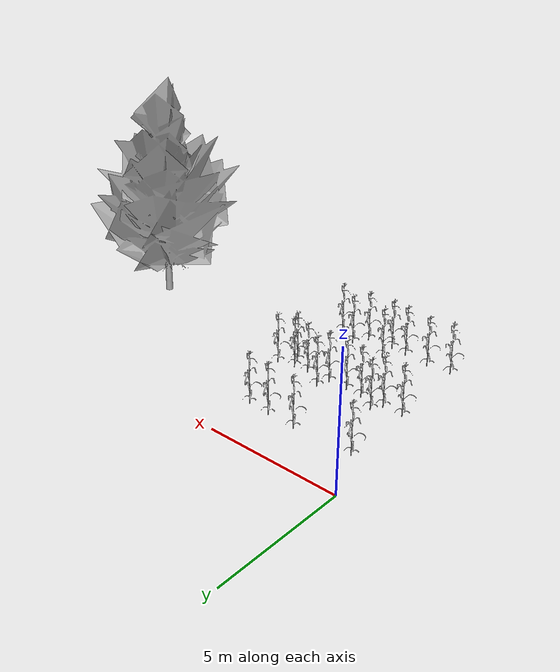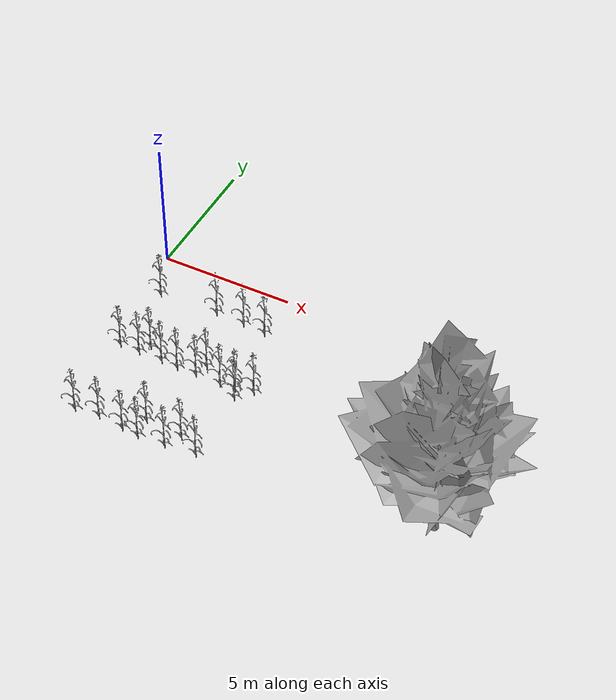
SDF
<sdf version="1.6">
 <world name="default">
  <model name="corn_stalk2">
   <static>1</static>
   <link name="corn_stalk2_link">
    <collision name="collision">
     <geometry><mesh><scale>1 1 1</scale><uri>model://corn_type2/meshes/model.stl</uri></mesh></geometry>
    </collision>
    <visual name="corn_stalk2_visual">
     <geometry><mesh><uri>model://corn_type2/meshes/model.stl</uri><scale>1 1 1</scale></mesh></geometry>
     <material>
      <script>
       <uri>model://corn_type2/materials/scripts</uri>
       <uri>model://corn_type2/materials/textures</uri>
       <name>corn_type2/Diffuse</name>
      </script>
     </material>
    </visual>
   </link>
   <pose>5.73501 -7.86532 0 0 -0 0</pose>
  </model>
  <model name="corn_stalk2_clone">
   <static>1</static>
   <link name="corn_stalk2_link">
    <collision name="collision">
     <geometry><mesh><scale>1 1 1</scale><uri>model://corn_type2/meshes/model.stl</uri></mesh></geometry>
    </collision>
    <visual name="corn_stalk2_visual">
     <geometry><mesh><uri>model://corn_type2/meshes/model.stl</uri><scale>1 1 1</scale></mesh></geometry>
     <material>
      <script>
       <uri>model://corn_type2/materials/scripts</uri>
       <uri>model://corn_type2/materials/textures</uri>
       <name>corn_type2/Diffuse</name>
      </script>
     </material>
    </visual>
   </link>
   <pose>4.6285 -8.00278 0 0 -0 0</pose>
  </model>
  <model name="corn_stalk2_clone_0">
   <static>1</static>
   <link name="corn_stalk2_link">
    <collision name="collision">
     <geometry><mesh><scale>1 1 1</scale><uri>model://corn_type2/meshes/model.stl</uri></mesh></geometry>
    </collision>
    <visual name="corn_stalk2_visual">
     <geometry><mesh><uri>model://corn_type2/meshes/model.stl</uri><scale>1 1 1</scale></mesh></geometry>
     <material>
      <script>
       <uri>model://corn_type2/materials/scripts</uri>
       <uri>model://corn_type2/materials/textures</uri>
       <name>corn_type2/Diffuse</name>
      </script>
     </material>
    </visual>
   </link>
   <pose>3.62653 -8.0596 0 0 -0 0</pose>
  </model>
  <model name="corn_stalk2_clone_1">
   <static>1</static>
   <link name="corn_stalk2_link">
    <collision name="collision">
     <geometry><mesh><scale>1 1 1</scale><uri>model://corn_type2/meshes/model.stl</uri></mesh></geometry>
    </collision>
    <visual name="corn_stalk2_visual">
     <geometry><mesh><uri>model://corn_type2/meshes/model.stl</uri><scale>1 1 1</scale></mesh></geometry>
     <material>
      <script>
       <uri>model://corn_type2/materials/scripts</uri>
       <uri>model://corn_type2/materials/textures</uri>
       <name>corn_type2/Diffuse</name>
      </script>
     </material>
    </visual>
   </link>
   <pose>3 -8 0 0 -0 0</pose>
  </model>
  <model name="corn_stalk2_clone_2">
   <static>1</static>
   <link name="corn_stalk2_link">
    <collision name="collision">
     <geometry><mesh><scale>1 1 1</scale><uri>model://corn_type2/meshes/model.stl</uri></mesh></geometry>
    </collision>
    <visual name="corn_stalk2_visual">
     <geometry><mesh><uri>model://corn_type2/meshes/model.stl</uri><scale>1 1 1</scale></mesh></geometry>
     <material>
      <script>
       <uri>model://corn_type2/materials/scripts</uri>
       <uri>model://corn_type2/materials/textures</uri>
       <name>corn_type2/Diffuse</name>
      </script>
     </material>
    </visual>
   </link>
   <pose>2.01327 -7.88367 0 0 -0 0</pose>
  </model>
  <model name="corn_stalk2_clone_3">
   <static>1</static>
   <link name="corn_stalk2_link">
    <collision name="collision">
     <geometry><mesh><scale>1 1 1</scale><uri>model://corn_type2/meshes/model.stl</uri></mesh></geometry>
    </collision>
    <visual name="corn_stalk2_visual">
     <geometry><mesh><uri>model://corn_type2/meshes/model.stl</uri><scale>1 1 1</scale></mesh></geometry>
     <material>
      <script>
       <uri>model://corn_type2/materials/scripts</uri>
       <uri>model://corn_type2/materials/textures</uri>
       <name>corn_type2/Diffuse</name>
      </script>
     </material>
    </visual>
   </link>
   <pose>1.11653 -7.97321 0 0 -0 0</pose>
  </model>
  <model name="corn_stalk2_clone_19">
   <static>1</static>
   <link name="corn_stalk2_link">
    <collision name="collision">
     <geometry><mesh><scale>1 1 1</scale><uri>model://corn_type2/meshes/model.stl</uri></mesh></geometry>
    </collision>
    <visual name="corn_stalk2_visual">
     <geometry><mesh><uri>model://corn_type2/meshes/model.stl</uri><scale>1 1 1</scale></mesh></geometry>
     <material>
      <script>
       <uri>model://corn_type2/materials/scripts</uri>
       <uri>model://corn_type2/materials/textures</uri>
       <name>corn_type2/Diffuse</name>
      </script>
     </material>
    </visual>
   </link>
   <pose>0.88456 -4.66776 0 0 -0 0</pose>
  </model>
  <model name="corn_stalk2_clone_20">
   <static>1</static>
   <link name="corn_stalk2_link">
    <collision name="collision">
     <geometry><mesh><scale>1 1 1</scale><uri>model://corn_type2/meshes/model.stl</uri></mesh></geometry>
    </collision>
    <visual name="corn_stalk2_visual">
     <geometry><mesh><uri>model://corn_type2/meshes/model.stl</uri><scale>1 1 1</scale></mesh></geometry>
     <material>
      <script>
       <uri>model://corn_type2/materials/scripts</uri>
       <uri>model://corn_type2/materials/textures</uri>
       <name>corn_type2/Diffuse</name>
      </script>
     </material>
    </visual>
   </link>
   <pose>1.65019 -4.68857 0 0 -0 0</pose>
  </model>
  <model name="corn_stalk2_clone_21">
   <static>1</static>
   <link name="corn_stalk2_link">
    <collision name="collision">
     <geometry><mesh><scale>1 1 1</scale><uri>model://corn_type2/meshes/model.stl</uri></mesh></geometry>
    </collision>
    <visual name="corn_stalk2_visual">
     <geometry><mesh><uri>model://corn_type2/meshes/model.stl</uri><scale>1 1 1</scale></mesh></geometry>
     <material>
      <script>
       <uri>model://corn_type2/materials/scripts</uri>
       <uri>model://corn_type2/materials/textures</uri>
       <name>corn_type2/Diffuse</name>
      </script>
     </material>
    </visual>
   </link>
   <pose>2.55559 -4.69142 0 0 -0 0</pose>
  </model>
  <model name="corn_stalk2_clone_22">
   <static>1</static>
   <link name="corn_stalk2_link">
    <collision name="collision">
     <geometry><mesh><scale>1 1 1</scale><uri>model://corn_type2/meshes/model.stl</uri></mesh></geometry>
    </collision>
    <visual name="corn_stalk2_visual">
     <geometry><mesh><uri>model://corn_type2/meshes/model.stl</uri><scale>1 1 1</scale></mesh></geometry>
     <material>
      <script>
       <uri>model://corn_type2/materials/scripts</uri>
       <uri>model://corn_type2/materials/textures</uri>
       <name>corn_type2/Diffuse</name>
      </script>
     </material>
    </visual>
   </link>
   <pose>3.20485 -4.73782 0 0 -0 0</pose>
  </model>
  <model name="corn_stalk2_clone_23">
   <static>1</static>
   <link name="corn_stalk2_link">
    <collision name="collision">
     <geometry><mesh><scale>1 1 1</scale><uri>model://corn_type2/meshes/model.stl</uri></mesh></geometry>
    </collision>
    <visual name="corn_stalk2_visual">
     <geometry><mesh><uri>model://corn_type2/meshes/model.stl</uri><scale>1 1 1</scale></mesh></geometry>
     <material>
      <script>
       <uri>model://corn_type2/materials/scripts</uri>
       <uri>model://corn_type2/materials/textures</uri>
       <name>corn_type2/Diffuse</name>
      </script>
     </material>
    </visual>
   </link>
   <pose>3.94305 -4.72702 0 0 -0 0</pose>
  </model>
  <model name="corn_stalk2_clone_24">
   <static>1</static>
   <link name="corn_stalk2_link">
    <collision name="collision">
     <geometry><mesh><scale>1 1 1</scale><uri>model://corn_type2/meshes/model.stl</uri></mesh></geometry>
    </collision>
    <visual name="corn_stalk2_visual">
     <geometry><mesh><uri>model://corn_type2/meshes/model.stl</uri><scale>1 1 1</scale></mesh></geometry>
     <material>
      <script>
       <uri>model://corn_type2/materials/scripts</uri>
       <uri>model://corn_type2/materials/textures</uri>
       <name>corn_type2/Diffuse</name>
      </script>
     </material>
    </visual>
   </link>
   <pose>4.89233 -4.7342 0 0 -0 0</pose>
  </model>
  <model name="corn_stalk2_clone_25">
   <static>1</static>
   <link name="corn_stalk2_link">
    <collision name="collision">
     <geometry><mesh><scale>1 1 1</scale><uri>model://corn_type2/meshes/model.stl</uri></mesh></geometry>
    </collision>
    <visual name="corn_stalk2_visual">
     <geometry><mesh><uri>model://corn_type2/meshes/model.stl</uri><scale>1 1 1</scale></mesh></geometry>
     <material>
      <script>
       <uri>model://corn_type2/materials/scripts</uri>
       <uri>model://corn_type2/materials/textures</uri>
       <name>corn_type2/Diffuse</name>
      </script>
     </material>
    </visual>
   </link>
   <pose>5.46065 -4.70234 0 0 -0 0</pose>
  </model>
  <model name="corn_stalk2_clone_26">
   <static>1</static>
   <link name="corn_stalk2_link">
    <collision name="collision">
     <geometry><mesh><scale>1 1 1</scale><uri>model://corn_type2/meshes/model.stl</uri></mesh></geometry>
    </collision>
    <visual name="corn_stalk2_visual">
     <geometry><mesh><uri>model://corn_type2/meshes/model.stl</uri><scale>1 1 1</scale></mesh></geometry>
     <material>
      <script>
       <uri>model://corn_type2/materials/scripts</uri>
       <uri>model://corn_type2/materials/textures</uri>
       <name>corn_type2/Diffuse</name>
      </script>
     </material>
    </visual>
   </link>
   <pose>5.08268 -1.90452 0 0 -0 0</pose>
  </model>
  <model name="corn_stalk2_clone_27">
   <static>1</static>
   <link name="corn_stalk2_link">
    <collision name="collision">
     <geometry><mesh><scale>1 1 1</scale><uri>model://corn_type2/meshes/model.stl</uri></mesh></geometry>
    </collision>
    <visual name="corn_stalk2_visual">
     <geometry><mesh><uri>model://corn_type2/meshes/model.stl</uri><scale>1 1 1</scale></mesh></geometry>
     <material>
      <script>
       <uri>model://corn_type2/materials/scripts</uri>
       <uri>model://corn_type2/materials/textures</uri>
       <name>corn_type2/Diffuse</name>
      </script>
     </material>
    </visual>
   </link>
   <pose>4.202 -1.82151 0 0 -0 0</pose>
  </model>
  <model name="corn_stalk2_clone_28">
   <static>1</static>
   <link name="corn_stalk2_link">
    <collision name="collision">
     <geometry><mesh><scale>1 1 1</scale><uri>model://corn_type2/meshes/model.stl</uri></mesh></geometry>
    </collision>
    <visual name="corn_stalk2_visual">
     <geometry><mesh><uri>model://corn_type2/meshes/model.stl</uri><scale>1 1 1</scale></mesh></geometry>
     <material>
      <script>
       <uri>model://corn_type2/materials/scripts</uri>
       <uri>model://corn_type2/materials/textures</uri>
       <name>corn_type2/Diffuse</name>
      </script>
     </material>
    </visual>
   </link>
   <pose>3.09583 -1.77801 0 0 -0 0</pose>
  </model>
  <model name="corn_stalk2_clone_30">
   <static>1</static>
   <link name="corn_stalk2_link">
    <collision name="collision">
     <geometry><mesh><scale>1 1 1</scale><uri>model://corn_type2/meshes/model.stl</uri></mesh></geometry>
    </collision>
    <visual name="corn_stalk2_visual">
     <geometry><mesh><uri>model://corn_type2/meshes/model.stl</uri><scale>1 1 1</scale></mesh></geometry>
     <material>
      <script>
       <uri>model://corn_type2/materials/scripts</uri>
       <uri>model://corn_type2/materials/textures</uri>
       <name>corn_type2/Diffuse</name>
      </script>
     </material>
    </visual>
   </link>
   <pose>0.848261 -1.85441 0 0 -0 0</pose>
  </model>
  <model name="tree_type2">
   <static>1</static>
   <link name="link">
    <collision name="collision"><geometry><box><size>0.3 0.3 10</size></box></geometry></collision>
    <visual name="visual">
     <geometry><mesh><uri>model://tree_type2/meshes/model.stl</uri><scale>1 1 1</scale></mesh></geometry>
     <material>
      <script>
       <uri>model://tree_type2/materials/scripts</uri>
       <uri>model://tree_type2/materials/textures</uri>
       <name>tree_type2/Diffuse</name>
      </script>
     </material>
    </visual>
   </link>
   <pose>14.3741 -6.11934 0 0 -0 0</pose>
  </model>
  <model name="corn_stalk2_0_clone_11">
   <static>1</static>
   <link name="corn_stalk2_link">
    <collision name="collision">
     <geometry><mesh><scale>1 1 1</scale><uri>model://corn_type2/meshes/model.stl</uri></mesh></geometry>
    </collision>
    <visual name="corn_stalk2_visual">
     <geometry><mesh><uri>model://corn_type2/meshes/model.stl</uri><scale>1 1 1</scale></mesh></geometry>
     <material>
      <script>
       <uri>model://corn_type2/materials/scripts</uri>
       <uri>model://corn_type2/materials/textures</uri>
       <name>corn_type2/Diffuse</name>
      </script>
     </material>
    </visual>
   </link>
   <pose>4.93869 -7.43461 0 0 -0 0</pose>
  </model>
  <model name="corn_stalk2_0_clone_12">
   <static>1</static>
   <link name="corn_stalk2_link">
    <collision name="collision">
     <geometry><mesh><scale>1 1 1</scale><uri>model://corn_type2/meshes/model.stl</uri></mesh></geometry>
    </collision>
    <visual name="corn_stalk2_visual">
     <geometry><mesh><uri>model://corn_type2/meshes/model.stl</uri><scale>1 1 1</scale></mesh></geometry>
     <material>
      <script>
       <uri>model://corn_type2/materials/scripts</uri>
       <uri>model://corn_type2/materials/textures</uri>
       <name>corn_type2/Diffuse</name>
      </script>
     </material>
    </visual>
   </link>
   <pose>3.53973 -7.32917 0 0 -0 0</pose>
  </model>
  <model name="corn_stalk2_0_clone_13">
   <static>1</static>
   <link name="corn_stalk2_link">
    <collision name="collision">
     <geometry><mesh><scale>1 1 1</scale><uri>model://corn_type2/meshes/model.stl</uri></mesh></geometry>
    </collision>
    <visual name="corn_stalk2_visual">
     <geometry><mesh><uri>model://corn_type2/meshes/model.stl</uri><scale>1 1 1</scale></mesh></geometry>
     <material>
      <script>
       <uri>model://corn_type2/materials/scripts</uri>
       <uri>model://corn_type2/materials/textures</uri>
       <name>corn_type2/Diffuse</name>
      </script>
     </material>
    </visual>
   </link>
   <pose>6.10205 -4.55651 0 0 -0 0</pose>
  </model>
  <model name="corn_stalk2_0_clone_14">
   <static>1</static>
   <link name="corn_stalk2_link">
    <collision name="collision">
     <geometry><mesh><scale>1 1 1</scale><uri>model://corn_type2/meshes/model.stl</uri></mesh></geometry>
    </collision>
    <visual name="corn_stalk2_visual">
     <geometry><mesh><uri>model://corn_type2/meshes/model.stl</uri><scale>1 1 1</scale></mesh></geometry>
     <material>
      <script>
       <uri>model://corn_type2/materials/scripts</uri>
       <uri>model://corn_type2/materials/textures</uri>
       <name>corn_type2/Diffuse</name>
      </script>
     </material>
    </visual>
   </link>
   <pose>5.63471 -5.08293 0 0 -0 0</pose>
  </model>
  <model name="corn_stalk2_0_clone_15">
   <static>1</static>
   <link name="corn_stalk2_link">
    <collision name="collision">
     <geometry><mesh><scale>1 1 1</scale><uri>model://corn_type2/meshes/model.stl</uri></mesh></geometry>
    </collision>
    <visual name="corn_stalk2_visual">
     <geometry><mesh><uri>model://corn_type2/meshes/model.stl</uri><scale>1 1 1</scale></mesh></geometry>
     <material>
      <script>
       <uri>model://corn_type2/materials/scripts</uri>
       <uri>model://corn_type2/materials/textures</uri>
       <name>corn_type2/Diffuse</name>
      </script>
     </material>
    </visual>
   </link>
   <pose>1.88107 -4.28864 0 0 -0 0</pose>
  </model>
  <model name="corn_stalk2_0_clone_23">
   <static>1</static>
   <link name="corn_stalk2_link">
    <collision name="collision">
     <geometry><mesh><scale>1 1 1</scale><uri>model://corn_type2/meshes/model.stl</uri></mesh></geometry>
    </collision>
    <visual name="corn_stalk2_visual">
     <geometry><mesh><uri>model://corn_type2/meshes/model.stl</uri><scale>1 1 1</scale></mesh></geometry>
     <material>
      <script>
       <uri>model://corn_type2/materials/scripts</uri>
       <uri>model://corn_type2/materials/textures</uri>
       <name>corn_type2/Diffuse</name>
      </script>
     </material>
    </visual>
   </link>
   <pose>4.08556 -4.23173 0 0 -0 0</pose>
  </model>
 </world>
</sdf>
